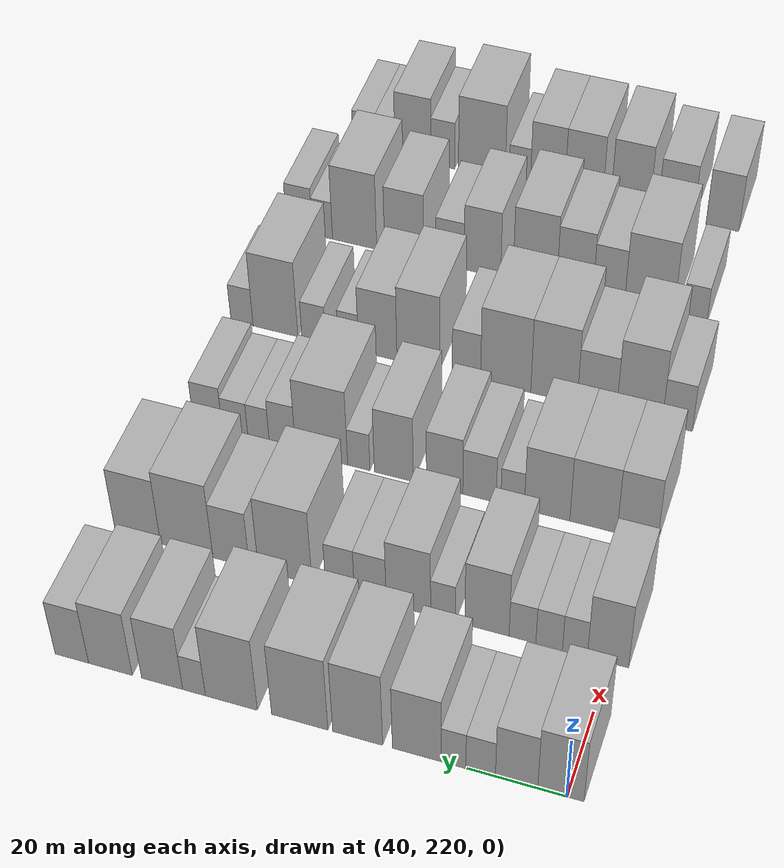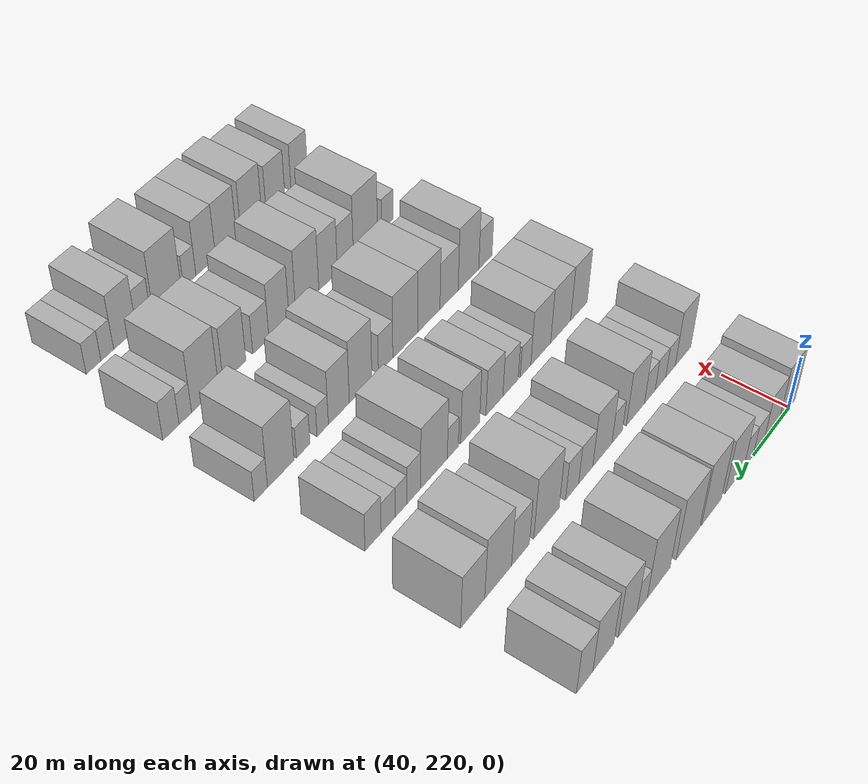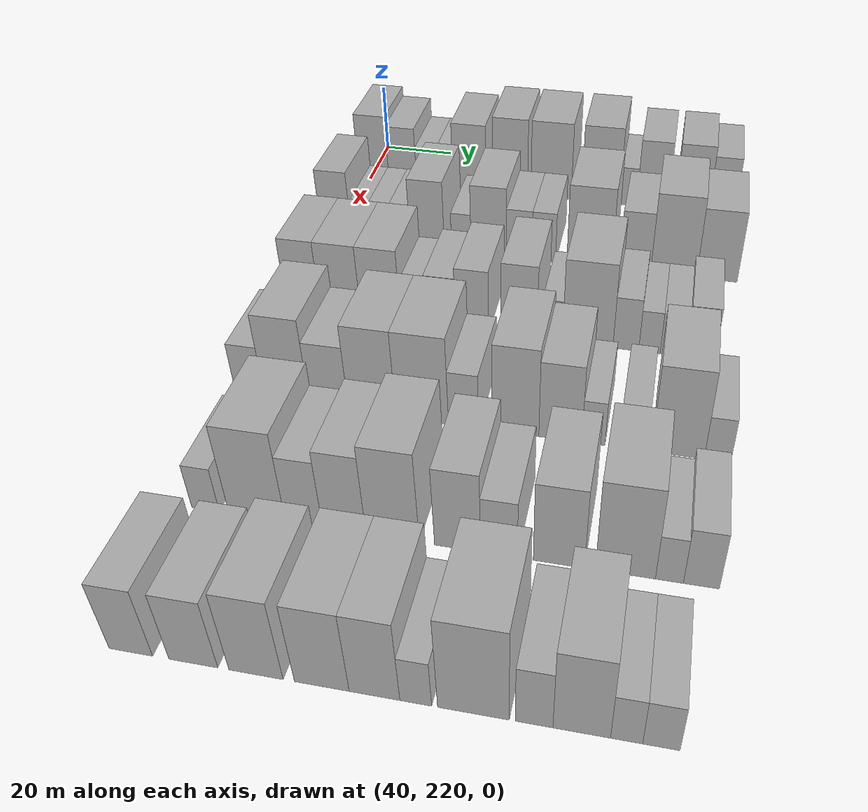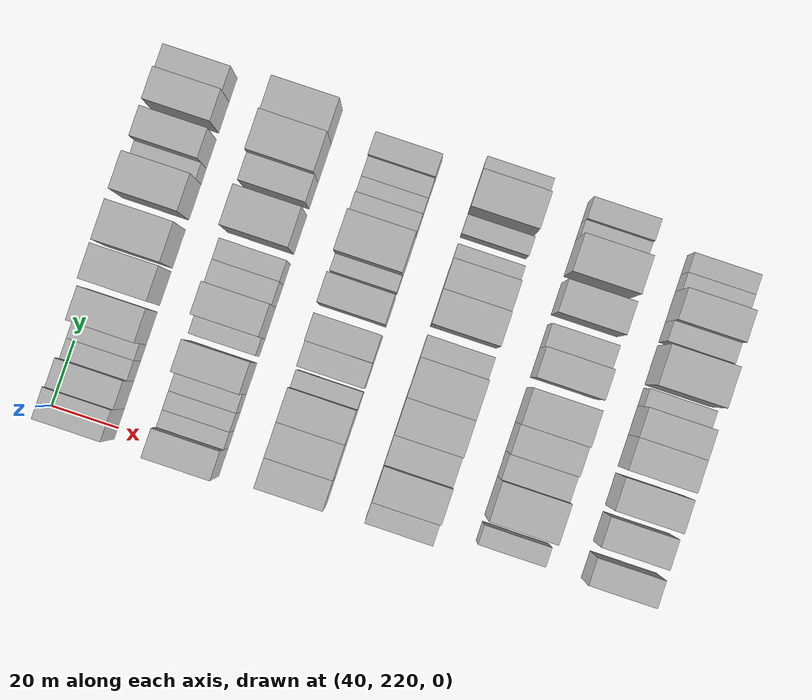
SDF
<sdf version="1.6">
 <world name="default">
  <model name="building_81">
   <static>1</static>
   <pose>50.0000 221.2689 0 0.000000 0.000000 0.000000</pose>
   <link name="link">
    <pose>0 0 10.50 0 0 0</pose>
    <collision name="collision"><geometry><box><size>20.0000 9.2093 21.0000</size></box></geometry></collision>
    <visual name="visual">
     <cast_shadows>0</cast_shadows>
     <geometry><box><size>20.0000 9.2093 21.0000</size></box></geometry>
     <material>
      <script>
       <uri>model://HANNAS_wall/materials/scripts</uri>
       <uri>model://HANNAS_wall/materials/textures</uri>
       <name>vrc/HANNAS_wall</name>
      </script>
     </material>
    </visual>
   </link>
  </model>
  <model name="building_82">
   <static>1</static>
   <pose>50.0000 230.1142 0 0.000000 0.000000 0.000000</pose>
   <link name="link">
    <pose>0 0 9.00 0 0 0</pose>
    <collision name="collision"><geometry><box><size>20.0000 8.4813 18.0000</size></box></geometry></collision>
    <visual name="visual">
     <cast_shadows>0</cast_shadows>
     <geometry><box><size>20.0000 8.4813 18.0000</size></box></geometry>
     <material>
      <script>
       <uri>model://HANNAS_wall/materials/scripts</uri>
       <uri>model://HANNAS_wall/materials/textures</uri>
       <name>vrc/HANNAS_wall</name>
      </script>
     </material>
    </visual>
   </link>
  </model>
  <model name="building_83">
   <static>1</static>
   <pose>50.0000 237.3378 0 0.000000 0.000000 0.000000</pose>
   <link name="link">
    <pose>0 0 6.00 0 0 0</pose>
    <collision name="collision"><geometry><box><size>20.0000 5.9659 12.0000</size></box></geometry></collision>
    <visual name="visual">
     <cast_shadows>0</cast_shadows>
     <geometry><box><size>20.0000 5.9659 12.0000</size></box></geometry>
     <material>
      <script>
       <uri>model://HANNAS_wall/materials/scripts</uri>
       <uri>model://HANNAS_wall/materials/textures</uri>
       <name>vrc/HANNAS_wall</name>
      </script>
     </material>
    </visual>
   </link>
  </model>
  <model name="building_84">
   <static>1</static>
   <pose>50.0000 242.8433 0 0.000000 0.000000 0.000000</pose>
   <link name="link">
    <pose>0 0 6.00 0 0 0</pose>
    <collision name="collision"><geometry><box><size>20.0000 5.0452 12.0000</size></box></geometry></collision>
    <visual name="visual">
     <cast_shadows>0</cast_shadows>
     <geometry><box><size>20.0000 5.0452 12.0000</size></box></geometry>
     <material>
      <script>
       <uri>model://HANNAS_wall/materials/scripts</uri>
       <uri>model://HANNAS_wall/materials/textures</uri>
       <name>vrc/HANNAS_wall</name>
      </script>
     </material>
    </visual>
   </link>
  </model>
  <model name="building_85">
   <static>1</static>
   <pose>50.0000 250.3256 0 0.000000 0.000000 0.000000</pose>
   <link name="link">
    <pose>0 0 10.50 0 0 0</pose>
    <collision name="collision"><geometry><box><size>20.0000 9.9194 21.0000</size></box></geometry></collision>
    <visual name="visual">
     <cast_shadows>0</cast_shadows>
     <geometry><box><size>20.0000 9.9194 21.0000</size></box></geometry>
     <material>
      <script>
       <uri>model://HANNAS_wall/materials/scripts</uri>
       <uri>model://HANNAS_wall/materials/textures</uri>
       <name>vrc/HANNAS_wall</name>
      </script>
     </material>
    </visual>
   </link>
  </model>
  <model name="building_86">
   <static>1</static>
   <pose>50.0000 262.4426 0 0.000000 0.000000 0.000000</pose>
   <link name="link">
    <pose>0 0 12.00 0 0 0</pose>
    <collision name="collision"><geometry><box><size>20.0000 10.3144 24.0000</size></box></geometry></collision>
    <visual name="visual">
     <cast_shadows>0</cast_shadows>
     <geometry><box><size>20.0000 10.3144 24.0000</size></box></geometry>
     <material>
      <script>
       <uri>model://HANNAS_wall/materials/scripts</uri>
       <uri>model://HANNAS_wall/materials/textures</uri>
       <name>vrc/HANNAS_wall</name>
      </script>
     </material>
    </visual>
   </link>
  </model>
  <model name="building_87">
   <static>1</static>
   <pose>50.0000 274.4874 0 0.000000 0.000000 0.000000</pose>
   <link name="link">
    <pose>0 0 12.00 0 0 0</pose>
    <collision name="collision"><geometry><box><size>20.0000 11.7753 24.0000</size></box></geometry></collision>
    <visual name="visual">
     <cast_shadows>0</cast_shadows>
     <geometry><box><size>20.0000 11.7753 24.0000</size></box></geometry>
     <material>
      <script>
       <uri>model://HANNAS_wall/materials/scripts</uri>
       <uri>model://HANNAS_wall/materials/textures</uri>
       <name>vrc/HANNAS_wall</name>
      </script>
     </material>
    </visual>
   </link>
  </model>
  <model name="building_88">
   <static>1</static>
   <pose>50.0000 288.8875 0 0.000000 0.000000 0.000000</pose>
   <link name="link">
    <pose>0 0 12.00 0 0 0</pose>
    <collision name="collision"><geometry><box><size>20.0000 11.0247 24.0000</size></box></geometry></collision>
    <visual name="visual">
     <cast_shadows>0</cast_shadows>
     <geometry><box><size>20.0000 11.0247 24.0000</size></box></geometry>
     <material>
      <script>
       <uri>model://HANNAS_wall/materials/scripts</uri>
       <uri>model://HANNAS_wall/materials/textures</uri>
       <name>vrc/HANNAS_wall</name>
      </script>
     </material>
    </visual>
   </link>
  </model>
  <model name="building_89">
   <static>1</static>
   <pose>50.0000 296.8274 0 0.000000 0.000000 0.000000</pose>
   <link name="link">
    <pose>0 0 6.00 0 0 0</pose>
    <collision name="collision"><geometry><box><size>20.0000 4.8552 12.0000</size></box></geometry></collision>
    <visual name="visual">
     <cast_shadows>0</cast_shadows>
     <geometry><box><size>20.0000 4.8552 12.0000</size></box></geometry>
     <material>
      <script>
       <uri>model://HANNAS_wall/materials/scripts</uri>
       <uri>model://HANNAS_wall/materials/textures</uri>
       <name>vrc/HANNAS_wall</name>
      </script>
     </material>
    </visual>
   </link>
  </model>
  <model name="building_90">
   <static>1</static>
   <pose>50.0000 303.6800 0 0.000000 0.000000 0.000000</pose>
   <link name="link">
    <pose>0 0 10.50 0 0 0</pose>
    <collision name="collision"><geometry><box><size>20.0000 8.8500 21.0000</size></box></geometry></collision>
    <visual name="visual">
     <cast_shadows>0</cast_shadows>
     <geometry><box><size>20.0000 8.8500 21.0000</size></box></geometry>
     <material>
      <script>
       <uri>model://HANNAS_wall/materials/scripts</uri>
       <uri>model://HANNAS_wall/materials/textures</uri>
       <name>vrc/HANNAS_wall</name>
      </script>
     </material>
    </visual>
   </link>
  </model>
  <model name="building_91">
   <static>1</static>
   <pose>50.0000 314.8587 0 0.000000 0.000000 0.000000</pose>
   <link name="link">
    <pose>0 0 10.50 0 0 0</pose>
    <collision name="collision"><geometry><box><size>20.0000 9.5074 21.0000</size></box></geometry></collision>
    <visual name="visual">
     <cast_shadows>0</cast_shadows>
     <geometry><box><size>20.0000 9.5074 21.0000</size></box></geometry>
     <material>
      <script>
       <uri>model://HANNAS_wall/materials/scripts</uri>
       <uri>model://HANNAS_wall/materials/textures</uri>
       <name>vrc/HANNAS_wall</name>
      </script>
     </material>
    </visual>
   </link>
  </model>
  <model name="building_92">
   <static>1</static>
   <pose>50.0000 323.2757 0 0.000000 0.000000 0.000000</pose>
   <link name="link">
    <pose>0 0 9.00 0 0 0</pose>
    <collision name="collision"><geometry><box><size>20.0000 7.3267 18.0000</size></box></geometry></collision>
    <visual name="visual">
     <cast_shadows>0</cast_shadows>
     <geometry><box><size>20.0000 7.3267 18.0000</size></box></geometry>
     <material>
      <script>
       <uri>model://HANNAS_wall/materials/scripts</uri>
       <uri>model://HANNAS_wall/materials/textures</uri>
       <name>vrc/HANNAS_wall</name>
      </script>
     </material>
    </visual>
   </link>
  </model>
  <model name="building_201">
   <static>1</static>
   <pose>82.0000 220.3982 0 0.000000 0.000000 0.000000</pose>
   <link name="link">
    <pose>0 0 10.50 0 0 0</pose>
    <collision name="collision"><geometry><box><size>20.0000 8.5645 21.0000</size></box></geometry></collision>
    <visual name="visual">
     <cast_shadows>0</cast_shadows>
     <geometry><box><size>20.0000 8.5645 21.0000</size></box></geometry>
     <material>
      <script>
       <uri>model://HANNAS_wall/materials/scripts</uri>
       <uri>model://HANNAS_wall/materials/textures</uri>
       <name>vrc/HANNAS_wall</name>
      </script>
     </material>
    </visual>
   </link>
  </model>
  <model name="building_202">
   <static>1</static>
   <pose>82.0000 227.2789 0 0.000000 0.000000 0.000000</pose>
   <link name="link">
    <pose>0 0 6.00 0 0 0</pose>
    <collision name="collision"><geometry><box><size>20.0000 5.1967 12.0000</size></box></geometry></collision>
    <visual name="visual">
     <cast_shadows>0</cast_shadows>
     <geometry><box><size>20.0000 5.1967 12.0000</size></box></geometry>
     <material>
      <script>
       <uri>model://HANNAS_wall/materials/scripts</uri>
       <uri>model://HANNAS_wall/materials/textures</uri>
       <name>vrc/HANNAS_wall</name>
      </script>
     </material>
    </visual>
   </link>
  </model>
  <model name="building_203">
   <static>1</static>
   <pose>82.0000 232.6651 0 0.000000 0.000000 0.000000</pose>
   <link name="link">
    <pose>0 0 6.00 0 0 0</pose>
    <collision name="collision"><geometry><box><size>20.0000 5.5757 12.0000</size></box></geometry></collision>
    <visual name="visual">
     <cast_shadows>0</cast_shadows>
     <geometry><box><size>20.0000 5.5757 12.0000</size></box></geometry>
     <material>
      <script>
       <uri>model://HANNAS_wall/materials/scripts</uri>
       <uri>model://HANNAS_wall/materials/textures</uri>
       <name>vrc/HANNAS_wall</name>
      </script>
     </material>
    </visual>
   </link>
  </model>
  <model name="building_204">
   <static>1</static>
   <pose>82.0000 238.2758 0 0.000000 0.000000 0.000000</pose>
   <link name="link">
    <pose>0 0 6.00 0 0 0</pose>
    <collision name="collision"><geometry><box><size>20.0000 5.6458 12.0000</size></box></geometry></collision>
    <visual name="visual">
     <cast_shadows>0</cast_shadows>
     <geometry><box><size>20.0000 5.6458 12.0000</size></box></geometry>
     <material>
      <script>
       <uri>model://HANNAS_wall/materials/scripts</uri>
       <uri>model://HANNAS_wall/materials/textures</uri>
       <name>vrc/HANNAS_wall</name>
      </script>
     </material>
    </visual>
   </link>
  </model>
  <model name="building_205">
   <static>1</static>
   <pose>82.0000 245.7991 0 0.000000 0.000000 0.000000</pose>
   <link name="link">
    <pose>0 0 10.50 0 0 0</pose>
    <collision name="collision"><geometry><box><size>20.0000 9.4008 21.0000</size></box></geometry></collision>
    <visual name="visual">
     <cast_shadows>0</cast_shadows>
     <geometry><box><size>20.0000 9.4008 21.0000</size></box></geometry>
     <material>
      <script>
       <uri>model://HANNAS_wall/materials/scripts</uri>
       <uri>model://HANNAS_wall/materials/textures</uri>
       <name>vrc/HANNAS_wall</name>
      </script>
     </material>
    </visual>
   </link>
  </model>
  <model name="building_206">
   <static>1</static>
   <pose>82.0000 255.1587 0 0.000000 0.000000 0.000000</pose>
   <link name="link">
    <pose>0 0 6.00 0 0 0</pose>
    <collision name="collision"><geometry><box><size>20.0000 5.3185 12.0000</size></box></geometry></collision>
    <visual name="visual">
     <cast_shadows>0</cast_shadows>
     <geometry><box><size>20.0000 5.3185 12.0000</size></box></geometry>
     <material>
      <script>
       <uri>model://HANNAS_wall/materials/scripts</uri>
       <uri>model://HANNAS_wall/materials/textures</uri>
       <name>vrc/HANNAS_wall</name>
      </script>
     </material>
    </visual>
   </link>
  </model>
  <model name="building_207">
   <static>1</static>
   <pose>82.0000 262.6081 0 0.000000 0.000000 0.000000</pose>
   <link name="link">
    <pose>0 0 10.50 0 0 0</pose>
    <collision name="collision"><geometry><box><size>20.0000 9.5802 21.0000</size></box></geometry></collision>
    <visual name="visual">
     <cast_shadows>0</cast_shadows>
     <geometry><box><size>20.0000 9.5802 21.0000</size></box></geometry>
     <material>
      <script>
       <uri>model://HANNAS_wall/materials/scripts</uri>
       <uri>model://HANNAS_wall/materials/textures</uri>
       <name>vrc/HANNAS_wall</name>
      </script>
     </material>
    </visual>
   </link>
  </model>
  <model name="building_208">
   <static>1</static>
   <pose>82.0000 270.8483 0 0.000000 0.000000 0.000000</pose>
   <link name="link">
    <pose>0 0 7.50 0 0 0</pose>
    <collision name="collision"><geometry><box><size>20.0000 6.9003 15.0000</size></box></geometry></collision>
    <visual name="visual">
     <cast_shadows>0</cast_shadows>
     <geometry><box><size>20.0000 6.9003 15.0000</size></box></geometry>
     <material>
      <script>
       <uri>model://HANNAS_wall/materials/scripts</uri>
       <uri>model://HANNAS_wall/materials/textures</uri>
       <name>vrc/HANNAS_wall</name>
      </script>
     </material>
    </visual>
   </link>
  </model>
  <model name="building_209">
   <static>1</static>
   <pose>82.0000 277.4435 0 0.000000 0.000000 0.000000</pose>
   <link name="link">
    <pose>0 0 7.50 0 0 0</pose>
    <collision name="collision"><geometry><box><size>20.0000 6.2900 15.0000</size></box></geometry></collision>
    <visual name="visual">
     <cast_shadows>0</cast_shadows>
     <geometry><box><size>20.0000 6.2900 15.0000</size></box></geometry>
     <material>
      <script>
       <uri>model://HANNAS_wall/materials/scripts</uri>
       <uri>model://HANNAS_wall/materials/textures</uri>
       <name>vrc/HANNAS_wall</name>
      </script>
     </material>
    </visual>
   </link>
  </model>
  <model name="building_210">
   <static>1</static>
   <pose>82.0000 289.5222 0 0.000000 0.000000 0.000000</pose>
   <link name="link">
    <pose>0 0 12.00 0 0 0</pose>
    <collision name="collision"><geometry><box><size>20.0000 11.8674 24.0000</size></box></geometry></collision>
    <visual name="visual">
     <cast_shadows>0</cast_shadows>
     <geometry><box><size>20.0000 11.8674 24.0000</size></box></geometry>
     <material>
      <script>
       <uri>model://HANNAS_wall/materials/scripts</uri>
       <uri>model://HANNAS_wall/materials/textures</uri>
       <name>vrc/HANNAS_wall</name>
      </script>
     </material>
    </visual>
   </link>
  </model>
  <model name="building_211">
   <static>1</static>
   <pose>82.0000 301.5171 0 0.000000 0.000000 0.000000</pose>
   <link name="link">
    <pose>0 0 9.00 0 0 0</pose>
    <collision name="collision"><geometry><box><size>20.0000 8.1224 18.0000</size></box></geometry></collision>
    <visual name="visual">
     <cast_shadows>0</cast_shadows>
     <geometry><box><size>20.0000 8.1224 18.0000</size></box></geometry>
     <material>
      <script>
       <uri>model://HANNAS_wall/materials/scripts</uri>
       <uri>model://HANNAS_wall/materials/textures</uri>
       <name>vrc/HANNAS_wall</name>
      </script>
     </material>
    </visual>
   </link>
  </model>
  <model name="building_212">
   <static>1</static>
   <pose>82.0000 311.4883 0 0.000000 0.000000 0.000000</pose>
   <link name="link">
    <pose>0 0 12.00 0 0 0</pose>
    <collision name="collision"><geometry><box><size>20.0000 11.8200 24.0000</size></box></geometry></collision>
    <visual name="visual">
     <cast_shadows>0</cast_shadows>
     <geometry><box><size>20.0000 11.8200 24.0000</size></box></geometry>
     <material>
      <script>
       <uri>model://HANNAS_wall/materials/scripts</uri>
       <uri>model://HANNAS_wall/materials/textures</uri>
       <name>vrc/HANNAS_wall</name>
      </script>
     </material>
    </visual>
   </link>
  </model>
  <model name="building_213">
   <static>1</static>
   <pose>82.0000 322.5639 0 0.000000 0.000000 0.000000</pose>
   <link name="link">
    <pose>0 0 10.50 0 0 0</pose>
    <collision name="collision"><geometry><box><size>20.0000 10.3311 21.0000</size></box></geometry></collision>
    <visual name="visual">
     <cast_shadows>0</cast_shadows>
     <geometry><box><size>20.0000 10.3311 21.0000</size></box></geometry>
     <material>
      <script>
       <uri>model://HANNAS_wall/materials/scripts</uri>
       <uri>model://HANNAS_wall/materials/textures</uri>
       <name>vrc/HANNAS_wall</name>
      </script>
     </material>
    </visual>
   </link>
  </model>
  <model name="building_321">
   <static>1</static>
   <pose>114.0000 222.4577 0 0.000000 0.000000 0.000000</pose>
   <link name="link">
    <pose>0 0 10.50 0 0 0</pose>
    <collision name="collision"><geometry><box><size>20.0000 8.7838 21.0000</size></box></geometry></collision>
    <visual name="visual">
     <cast_shadows>0</cast_shadows>
     <geometry><box><size>20.0000 8.7838 21.0000</size></box></geometry>
     <material>
      <script>
       <uri>model://HANNAS_wall/materials/scripts</uri>
       <uri>model://HANNAS_wall/materials/textures</uri>
       <name>vrc/HANNAS_wall</name>
      </script>
     </material>
    </visual>
   </link>
  </model>
  <model name="building_322">
   <static>1</static>
   <pose>114.0000 232.0140 0 0.000000 0.000000 0.000000</pose>
   <link name="link">
    <pose>0 0 10.50 0 0 0</pose>
    <collision name="collision"><geometry><box><size>20.0000 10.3288 21.0000</size></box></geometry></collision>
    <visual name="visual">
     <cast_shadows>0</cast_shadows>
     <geometry><box><size>20.0000 10.3288 21.0000</size></box></geometry>
     <material>
      <script>
       <uri>model://HANNAS_wall/materials/scripts</uri>
       <uri>model://HANNAS_wall/materials/textures</uri>
       <name>vrc/HANNAS_wall</name>
      </script>
     </material>
    </visual>
   </link>
  </model>
  <model name="building_323">
   <static>1</static>
   <pose>114.0000 242.1978 0 0.000000 0.000000 0.000000</pose>
   <link name="link">
    <pose>0 0 10.50 0 0 0</pose>
    <collision name="collision"><geometry><box><size>20.0000 10.0388 21.0000</size></box></geometry></collision>
    <visual name="visual">
     <cast_shadows>0</cast_shadows>
     <geometry><box><size>20.0000 10.0388 21.0000</size></box></geometry>
     <material>
      <script>
       <uri>model://HANNAS_wall/materials/scripts</uri>
       <uri>model://HANNAS_wall/materials/textures</uri>
       <name>vrc/HANNAS_wall</name>
      </script>
     </material>
    </visual>
   </link>
  </model>
  <model name="building_324">
   <static>1</static>
   <pose>114.0000 249.8424 0 0.000000 0.000000 0.000000</pose>
   <link name="link">
    <pose>0 0 6.00 0 0 0</pose>
    <collision name="collision"><geometry><box><size>20.0000 5.2505 12.0000</size></box></geometry></collision>
    <visual name="visual">
     <cast_shadows>0</cast_shadows>
     <geometry><box><size>20.0000 5.2505 12.0000</size></box></geometry>
     <material>
      <script>
       <uri>model://HANNAS_wall/materials/scripts</uri>
       <uri>model://HANNAS_wall/materials/textures</uri>
       <name>vrc/HANNAS_wall</name>
      </script>
     </material>
    </visual>
   </link>
  </model>
  <model name="building_325">
   <static>1</static>
   <pose>114.0000 257.2094 0 0.000000 0.000000 0.000000</pose>
   <link name="link">
    <pose>0 0 7.50 0 0 0</pose>
    <collision name="collision"><geometry><box><size>20.0000 7.4834 15.0000</size></box></geometry></collision>
    <visual name="visual">
     <cast_shadows>0</cast_shadows>
     <geometry><box><size>20.0000 7.4834 15.0000</size></box></geometry>
     <material>
      <script>
       <uri>model://HANNAS_wall/materials/scripts</uri>
       <uri>model://HANNAS_wall/materials/textures</uri>
       <name>vrc/HANNAS_wall</name>
      </script>
     </material>
    </visual>
   </link>
  </model>
  <model name="building_326">
   <static>1</static>
   <pose>114.0000 265.0260 0 0.000000 0.000000 0.000000</pose>
   <link name="link">
    <pose>0 0 9.00 0 0 0</pose>
    <collision name="collision"><geometry><box><size>20.0000 8.1498 18.0000</size></box></geometry></collision>
    <visual name="visual">
     <cast_shadows>0</cast_shadows>
     <geometry><box><size>20.0000 8.1498 18.0000</size></box></geometry>
     <material>
      <script>
       <uri>model://HANNAS_wall/materials/scripts</uri>
       <uri>model://HANNAS_wall/materials/textures</uri>
       <name>vrc/HANNAS_wall</name>
      </script>
     </material>
    </visual>
   </link>
  </model>
  <model name="building_327">
   <static>1</static>
   <pose>114.0000 276.5227 0 0.000000 0.000000 0.000000</pose>
   <link name="link">
    <pose>0 0 10.50 0 0 0</pose>
    <collision name="collision"><geometry><box><size>20.0000 8.8436 21.0000</size></box></geometry></collision>
    <visual name="visual">
     <cast_shadows>0</cast_shadows>
     <geometry><box><size>20.0000 8.8436 21.0000</size></box></geometry>
     <material>
      <script>
       <uri>model://HANNAS_wall/materials/scripts</uri>
       <uri>model://HANNAS_wall/materials/textures</uri>
       <name>vrc/HANNAS_wall</name>
      </script>
     </material>
    </visual>
   </link>
  </model>
  <model name="building_328">
   <static>1</static>
   <pose>114.0000 284.4895 0 0.000000 0.000000 0.000000</pose>
   <link name="link">
    <pose>0 0 6.00 0 0 0</pose>
    <collision name="collision"><geometry><box><size>20.0000 5.0899 12.0000</size></box></geometry></collision>
    <visual name="visual">
     <cast_shadows>0</cast_shadows>
     <geometry><box><size>20.0000 5.0899 12.0000</size></box></geometry>
     <material>
      <script>
       <uri>model://HANNAS_wall/materials/scripts</uri>
       <uri>model://HANNAS_wall/materials/textures</uri>
       <name>vrc/HANNAS_wall</name>
      </script>
     </material>
    </visual>
   </link>
  </model>
  <model name="building_329">
   <static>1</static>
   <pose>114.0000 293.0327 0 0.000000 0.000000 0.000000</pose>
   <link name="link">
    <pose>0 0 12.00 0 0 0</pose>
    <collision name="collision"><geometry><box><size>20.0000 11.9965 24.0000</size></box></geometry></collision>
    <visual name="visual">
     <cast_shadows>0</cast_shadows>
     <geometry><box><size>20.0000 11.9965 24.0000</size></box></geometry>
     <material>
      <script>
       <uri>model://HANNAS_wall/materials/scripts</uri>
       <uri>model://HANNAS_wall/materials/textures</uri>
       <name>vrc/HANNAS_wall</name>
      </script>
     </material>
    </visual>
   </link>
  </model>
  <model name="building_330">
   <static>1</static>
   <pose>114.0000 302.0735 0 0.000000 0.000000 0.000000</pose>
   <link name="link">
    <pose>0 0 7.50 0 0 0</pose>
    <collision name="collision"><geometry><box><size>20.0000 6.0850 15.0000</size></box></geometry></collision>
    <visual name="visual">
     <cast_shadows>0</cast_shadows>
     <geometry><box><size>20.0000 6.0850 15.0000</size></box></geometry>
     <material>
      <script>
       <uri>model://HANNAS_wall/materials/scripts</uri>
       <uri>model://HANNAS_wall/materials/textures</uri>
       <name>vrc/HANNAS_wall</name>
      </script>
     </material>
    </visual>
   </link>
  </model>
  <model name="building_331">
   <static>1</static>
   <pose>114.0000 307.6143 0 0.000000 0.000000 0.000000</pose>
   <link name="link">
    <pose>0 0 6.00 0 0 0</pose>
    <collision name="collision"><geometry><box><size>20.0000 4.9967 12.0000</size></box></geometry></collision>
    <visual name="visual">
     <cast_shadows>0</cast_shadows>
     <geometry><box><size>20.0000 4.9967 12.0000</size></box></geometry>
     <material>
      <script>
       <uri>model://HANNAS_wall/materials/scripts</uri>
       <uri>model://HANNAS_wall/materials/textures</uri>
       <name>vrc/HANNAS_wall</name>
      </script>
     </material>
    </visual>
   </link>
  </model>
  <model name="building_332">
   <static>1</static>
   <pose>114.0000 313.0994 0 0.000000 0.000000 0.000000</pose>
   <link name="link">
    <pose>0 0 6.00 0 0 0</pose>
    <collision name="collision"><geometry><box><size>20.0000 5.9735 12.0000</size></box></geometry></collision>
    <visual name="visual">
     <cast_shadows>0</cast_shadows>
     <geometry><box><size>20.0000 5.9735 12.0000</size></box></geometry>
     <material>
      <script>
       <uri>model://HANNAS_wall/materials/scripts</uri>
       <uri>model://HANNAS_wall/materials/textures</uri>
       <name>vrc/HANNAS_wall</name>
      </script>
     </material>
    </visual>
   </link>
  </model>
  <model name="building_333">
   <static>1</static>
   <pose>114.0000 319.4755 0 0.000000 0.000000 0.000000</pose>
   <link name="link">
    <pose>0 0 7.50 0 0 0</pose>
    <collision name="collision"><geometry><box><size>20.0000 6.7786 15.0000</size></box></geometry></collision>
    <visual name="visual">
     <cast_shadows>0</cast_shadows>
     <geometry><box><size>20.0000 6.7786 15.0000</size></box></geometry>
     <material>
      <script>
       <uri>model://HANNAS_wall/materials/scripts</uri>
       <uri>model://HANNAS_wall/materials/textures</uri>
       <name>vrc/HANNAS_wall</name>
      </script>
     </material>
    </visual>
   </link>
  </model>
  <model name="building_439">
   <static>1</static>
   <pose>146.0000 221.5422 0 0.000000 0.000000 0.000000</pose>
   <link name="link">
    <pose>0 0 7.50 0 0 0</pose>
    <collision name="collision"><geometry><box><size>20.0000 6.8098 15.0000</size></box></geometry></collision>
    <visual name="visual">
     <cast_shadows>0</cast_shadows>
     <geometry><box><size>20.0000 6.8098 15.0000</size></box></geometry>
     <material>
      <script>
       <uri>model://HANNAS_wall/materials/scripts</uri>
       <uri>model://HANNAS_wall/materials/textures</uri>
       <name>vrc/HANNAS_wall</name>
      </script>
     </material>
    </visual>
   </link>
  </model>
  <model name="building_440">
   <static>1</static>
   <pose>146.0000 230.1543 0 0.000000 0.000000 0.000000</pose>
   <link name="link">
    <pose>0 0 12.00 0 0 0</pose>
    <collision name="collision"><geometry><box><size>20.0000 10.4144 24.0000</size></box></geometry></collision>
    <visual name="visual">
     <cast_shadows>0</cast_shadows>
     <geometry><box><size>20.0000 10.4144 24.0000</size></box></geometry>
     <material>
      <script>
       <uri>model://HANNAS_wall/materials/scripts</uri>
       <uri>model://HANNAS_wall/materials/textures</uri>
       <name>vrc/HANNAS_wall</name>
      </script>
     </material>
    </visual>
   </link>
  </model>
  <model name="building_441">
   <static>1</static>
   <pose>146.0000 239.8431 0 0.000000 0.000000 0.000000</pose>
   <link name="link">
    <pose>0 0 9.00 0 0 0</pose>
    <collision name="collision"><geometry><box><size>20.0000 8.9633 18.0000</size></box></geometry></collision>
    <visual name="visual">
     <cast_shadows>0</cast_shadows>
     <geometry><box><size>20.0000 8.9633 18.0000</size></box></geometry>
     <material>
      <script>
       <uri>model://HANNAS_wall/materials/scripts</uri>
       <uri>model://HANNAS_wall/materials/textures</uri>
       <name>vrc/HANNAS_wall</name>
      </script>
     </material>
    </visual>
   </link>
  </model>
  <model name="building_442">
   <static>1</static>
   <pose>146.0000 249.6888 0 0.000000 0.000000 0.000000</pose>
   <link name="link">
    <pose>0 0 12.00 0 0 0</pose>
    <collision name="collision"><geometry><box><size>20.0000 10.7281 24.0000</size></box></geometry></collision>
    <visual name="visual">
     <cast_shadows>0</cast_shadows>
     <geometry><box><size>20.0000 10.7281 24.0000</size></box></geometry>
     <material>
      <script>
       <uri>model://HANNAS_wall/materials/scripts</uri>
       <uri>model://HANNAS_wall/materials/textures</uri>
       <name>vrc/HANNAS_wall</name>
      </script>
     </material>
    </visual>
   </link>
  </model>
  <model name="building_443">
   <static>1</static>
   <pose>146.0000 260.9153 0 0.000000 0.000000 0.000000</pose>
   <link name="link">
    <pose>0 0 12.00 0 0 0</pose>
    <collision name="collision"><geometry><box><size>20.0000 11.7249 24.0000</size></box></geometry></collision>
    <visual name="visual">
     <cast_shadows>0</cast_shadows>
     <geometry><box><size>20.0000 11.7249 24.0000</size></box></geometry>
     <material>
      <script>
       <uri>model://HANNAS_wall/materials/scripts</uri>
       <uri>model://HANNAS_wall/materials/textures</uri>
       <name>vrc/HANNAS_wall</name>
      </script>
     </material>
    </visual>
   </link>
  </model>
  <model name="building_444">
   <static>1</static>
   <pose>146.0000 270.1000 0 0.000000 0.000000 0.000000</pose>
   <link name="link">
    <pose>0 0 7.50 0 0 0</pose>
    <collision name="collision"><geometry><box><size>20.0000 6.6444 15.0000</size></box></geometry></collision>
    <visual name="visual">
     <cast_shadows>0</cast_shadows>
     <geometry><box><size>20.0000 6.6444 15.0000</size></box></geometry>
     <material>
      <script>
       <uri>model://HANNAS_wall/materials/scripts</uri>
       <uri>model://HANNAS_wall/materials/textures</uri>
       <name>vrc/HANNAS_wall</name>
      </script>
     </material>
    </visual>
   </link>
  </model>
  <model name="building_445">
   <static>1</static>
   <pose>146.0000 281.4674 0 0.000000 0.000000 0.000000</pose>
   <link name="link">
    <pose>0 0 12.00 0 0 0</pose>
    <collision name="collision"><geometry><box><size>20.0000 10.0904 24.0000</size></box></geometry></collision>
    <visual name="visual">
     <cast_shadows>0</cast_shadows>
     <geometry><box><size>20.0000 10.0904 24.0000</size></box></geometry>
     <material>
      <script>
       <uri>model://HANNAS_wall/materials/scripts</uri>
       <uri>model://HANNAS_wall/materials/textures</uri>
       <name>vrc/HANNAS_wall</name>
      </script>
     </material>
    </visual>
   </link>
  </model>
  <model name="building_446">
   <static>1</static>
   <pose>146.0000 291.1165 0 0.000000 0.000000 0.000000</pose>
   <link name="link">
    <pose>0 0 10.50 0 0 0</pose>
    <collision name="collision"><geometry><box><size>20.0000 9.2079 21.0000</size></box></geometry></collision>
    <visual name="visual">
     <cast_shadows>0</cast_shadows>
     <geometry><box><size>20.0000 9.2079 21.0000</size></box></geometry>
     <material>
      <script>
       <uri>model://HANNAS_wall/materials/scripts</uri>
       <uri>model://HANNAS_wall/materials/textures</uri>
       <name>vrc/HANNAS_wall</name>
      </script>
     </material>
    </visual>
   </link>
  </model>
  <model name="building_447">
   <static>1</static>
   <pose>146.0000 298.1789 0 0.000000 0.000000 0.000000</pose>
   <link name="link">
    <pose>0 0 6.00 0 0 0</pose>
    <collision name="collision"><geometry><box><size>20.0000 4.9169 12.0000</size></box></geometry></collision>
    <visual name="visual">
     <cast_shadows>0</cast_shadows>
     <geometry><box><size>20.0000 4.9169 12.0000</size></box></geometry>
     <material>
      <script>
       <uri>model://HANNAS_wall/materials/scripts</uri>
       <uri>model://HANNAS_wall/materials/textures</uri>
       <name>vrc/HANNAS_wall</name>
      </script>
     </material>
    </visual>
   </link>
  </model>
  <model name="building_448">
   <static>1</static>
   <pose>146.0000 306.5171 0 0.000000 0.000000 0.000000</pose>
   <link name="link">
    <pose>0 0 6.00 0 0 0</pose>
    <collision name="collision"><geometry><box><size>20.0000 5.7596 12.0000</size></box></geometry></collision>
    <visual name="visual">
     <cast_shadows>0</cast_shadows>
     <geometry><box><size>20.0000 5.7596 12.0000</size></box></geometry>
     <material>
      <script>
       <uri>model://HANNAS_wall/materials/scripts</uri>
       <uri>model://HANNAS_wall/materials/textures</uri>
       <name>vrc/HANNAS_wall</name>
      </script>
     </material>
    </visual>
   </link>
  </model>
  <model name="building_449">
   <static>1</static>
   <pose>146.0000 315.8622 0 0.000000 0.000000 0.000000</pose>
   <link name="link">
    <pose>0 0 12.00 0 0 0</pose>
    <collision name="collision"><geometry><box><size>20.0000 10.9305 24.0000</size></box></geometry></collision>
    <visual name="visual">
     <cast_shadows>0</cast_shadows>
     <geometry><box><size>20.0000 10.9305 24.0000</size></box></geometry>
     <material>
      <script>
       <uri>model://HANNAS_wall/materials/scripts</uri>
       <uri>model://HANNAS_wall/materials/textures</uri>
       <name>vrc/HANNAS_wall</name>
      </script>
     </material>
    </visual>
   </link>
  </model>
  <model name="building_450">
   <static>1</static>
   <pose>146.0000 324.0495 0 0.000000 0.000000 0.000000</pose>
   <link name="link">
    <pose>0 0 6.00 0 0 0</pose>
    <collision name="collision"><geometry><box><size>20.0000 5.4441 12.0000</size></box></geometry></collision>
    <visual name="visual">
     <cast_shadows>0</cast_shadows>
     <geometry><box><size>20.0000 5.4441 12.0000</size></box></geometry>
     <material>
      <script>
       <uri>model://HANNAS_wall/materials/scripts</uri>
       <uri>model://HANNAS_wall/materials/textures</uri>
       <name>vrc/HANNAS_wall</name>
      </script>
     </material>
    </visual>
   </link>
  </model>
  <model name="building_564">
   <static>1</static>
   <pose>178.0000 225.1932 0 0.000000 0.000000 0.000000</pose>
   <link name="link">
    <pose>0 0 6.00 0 0 0</pose>
    <collision name="collision"><geometry><box><size>20.0000 5.7702 12.0000</size></box></geometry></collision>
    <visual name="visual">
     <cast_shadows>0</cast_shadows>
     <geometry><box><size>20.0000 5.7702 12.0000</size></box></geometry>
     <material>
      <script>
       <uri>model://HANNAS_wall/materials/scripts</uri>
       <uri>model://HANNAS_wall/materials/textures</uri>
       <name>vrc/HANNAS_wall</name>
      </script>
     </material>
    </visual>
   </link>
  </model>
  <model name="building_565">
   <static>1</static>
   <pose>178.0000 235.9443 0 0.000000 0.000000 0.000000</pose>
   <link name="link">
    <pose>0 0 12.00 0 0 0</pose>
    <collision name="collision"><geometry><box><size>20.0000 11.7320 24.0000</size></box></geometry></collision>
    <visual name="visual">
     <cast_shadows>0</cast_shadows>
     <geometry><box><size>20.0000 11.7320 24.0000</size></box></geometry>
     <material>
      <script>
       <uri>model://HANNAS_wall/materials/scripts</uri>
       <uri>model://HANNAS_wall/materials/textures</uri>
       <name>vrc/HANNAS_wall</name>
      </script>
     </material>
    </visual>
   </link>
  </model>
  <model name="building_566">
   <static>1</static>
   <pose>178.0000 245.5852 0 0.000000 0.000000 0.000000</pose>
   <link name="link">
    <pose>0 0 9.00 0 0 0</pose>
    <collision name="collision"><geometry><box><size>20.0000 7.5498 18.0000</size></box></geometry></collision>
    <visual name="visual">
     <cast_shadows>0</cast_shadows>
     <geometry><box><size>20.0000 7.5498 18.0000</size></box></geometry>
     <material>
      <script>
       <uri>model://HANNAS_wall/materials/scripts</uri>
       <uri>model://HANNAS_wall/materials/textures</uri>
       <name>vrc/HANNAS_wall</name>
      </script>
     </material>
    </visual>
   </link>
  </model>
  <model name="building_567">
   <static>1</static>
   <pose>178.0000 253.7147 0 0.000000 0.000000 0.000000</pose>
   <link name="link">
    <pose>0 0 10.50 0 0 0</pose>
    <collision name="collision"><geometry><box><size>20.0000 8.7093 21.0000</size></box></geometry></collision>
    <visual name="visual">
     <cast_shadows>0</cast_shadows>
     <geometry><box><size>20.0000 8.7093 21.0000</size></box></geometry>
     <material>
      <script>
       <uri>model://HANNAS_wall/materials/scripts</uri>
       <uri>model://HANNAS_wall/materials/textures</uri>
       <name>vrc/HANNAS_wall</name>
      </script>
     </material>
    </visual>
   </link>
  </model>
  <model name="building_568">
   <static>1</static>
   <pose>178.0000 263.3561 0 0.000000 0.000000 0.000000</pose>
   <link name="link">
    <pose>0 0 12.00 0 0 0</pose>
    <collision name="collision"><geometry><box><size>20.0000 10.5734 24.0000</size></box></geometry></collision>
    <visual name="visual">
     <cast_shadows>0</cast_shadows>
     <geometry><box><size>20.0000 10.5734 24.0000</size></box></geometry>
     <material>
      <script>
       <uri>model://HANNAS_wall/materials/scripts</uri>
       <uri>model://HANNAS_wall/materials/textures</uri>
       <name>vrc/HANNAS_wall</name>
      </script>
     </material>
    </visual>
   </link>
  </model>
  <model name="building_569">
   <static>1</static>
   <pose>178.0000 276.1267 0 0.000000 0.000000 0.000000</pose>
   <link name="link">
    <pose>0 0 10.50 0 0 0</pose>
    <collision name="collision"><geometry><box><size>20.0000 8.9679 21.0000</size></box></geometry></collision>
    <visual name="visual">
     <cast_shadows>0</cast_shadows>
     <geometry><box><size>20.0000 8.9679 21.0000</size></box></geometry>
     <material>
      <script>
       <uri>model://HANNAS_wall/materials/scripts</uri>
       <uri>model://HANNAS_wall/materials/textures</uri>
       <name>vrc/HANNAS_wall</name>
      </script>
     </material>
    </visual>
   </link>
  </model>
  <model name="building_570">
   <static>1</static>
   <pose>178.0000 284.1338 0 0.000000 0.000000 0.000000</pose>
   <link name="link">
    <pose>0 0 7.50 0 0 0</pose>
    <collision name="collision"><geometry><box><size>20.0000 7.0463 15.0000</size></box></geometry></collision>
    <visual name="visual">
     <cast_shadows>0</cast_shadows>
     <geometry><box><size>20.0000 7.0463 15.0000</size></box></geometry>
     <material>
      <script>
       <uri>model://HANNAS_wall/materials/scripts</uri>
       <uri>model://HANNAS_wall/materials/textures</uri>
       <name>vrc/HANNAS_wall</name>
      </script>
     </material>
    </visual>
   </link>
  </model>
  <model name="building_571">
   <static>1</static>
   <pose>178.0000 295.4900 0 0.000000 0.000000 0.000000</pose>
   <link name="link">
    <pose>0 0 10.50 0 0 0</pose>
    <collision name="collision"><geometry><box><size>20.0000 9.6660 21.0000</size></box></geometry></collision>
    <visual name="visual">
     <cast_shadows>0</cast_shadows>
     <geometry><box><size>20.0000 9.6660 21.0000</size></box></geometry>
     <material>
      <script>
       <uri>model://HANNAS_wall/materials/scripts</uri>
       <uri>model://HANNAS_wall/materials/textures</uri>
       <name>vrc/HANNAS_wall</name>
      </script>
     </material>
    </visual>
   </link>
  </model>
  <model name="building_572">
   <static>1</static>
   <pose>178.0000 307.8734 0 0.000000 0.000000 0.000000</pose>
   <link name="link">
    <pose>0 0 12.00 0 0 0</pose>
    <collision name="collision"><geometry><box><size>20.0000 11.1009 24.0000</size></box></geometry></collision>
    <visual name="visual">
     <cast_shadows>0</cast_shadows>
     <geometry><box><size>20.0000 11.1009 24.0000</size></box></geometry>
     <material>
      <script>
       <uri>model://HANNAS_wall/materials/scripts</uri>
       <uri>model://HANNAS_wall/materials/textures</uri>
       <name>vrc/HANNAS_wall</name>
      </script>
     </material>
    </visual>
   </link>
  </model>
  <model name="building_573">
   <static>1</static>
   <pose>178.0000 315.9834 0 0.000000 0.000000 0.000000</pose>
   <link name="link">
    <pose>0 0 6.00 0 0 0</pose>
    <collision name="collision"><geometry><box><size>20.0000 5.1191 12.0000</size></box></geometry></collision>
    <visual name="visual">
     <cast_shadows>0</cast_shadows>
     <geometry><box><size>20.0000 5.1191 12.0000</size></box></geometry>
     <material>
      <script>
       <uri>model://HANNAS_wall/materials/scripts</uri>
       <uri>model://HANNAS_wall/materials/textures</uri>
       <name>vrc/HANNAS_wall</name>
      </script>
     </material>
    </visual>
   </link>
  </model>
  <model name="building_574">
   <static>1</static>
   <pose>178.0000 321.7994 0 0.000000 0.000000 0.000000</pose>
   <link name="link">
    <pose>0 0 7.50 0 0 0</pose>
    <collision name="collision"><geometry><box><size>20.0000 6.5129 15.0000</size></box></geometry></collision>
    <visual name="visual">
     <cast_shadows>0</cast_shadows>
     <geometry><box><size>20.0000 6.5129 15.0000</size></box></geometry>
     <material>
      <script>
       <uri>model://HANNAS_wall/materials/scripts</uri>
       <uri>model://HANNAS_wall/materials/textures</uri>
       <name>vrc/HANNAS_wall</name>
      </script>
     </material>
    </visual>
   </link>
  </model>
  <model name="building_688">
   <static>1</static>
   <pose>210.0000 225.8540 0 0.000000 0.000000 0.000000</pose>
   <link name="link">
    <pose>0 0 9.00 0 0 0</pose>
    <collision name="collision"><geometry><box><size>20.0000 8.0611 18.0000</size></box></geometry></collision>
    <visual name="visual">
     <cast_shadows>0</cast_shadows>
     <geometry><box><size>20.0000 8.0611 18.0000</size></box></geometry>
     <material>
      <script>
       <uri>model://HANNAS_wall/materials/scripts</uri>
       <uri>model://HANNAS_wall/materials/textures</uri>
       <name>vrc/HANNAS_wall</name>
      </script>
     </material>
    </visual>
   </link>
  </model>
  <model name="building_689">
   <static>1</static>
   <pose>210.0000 237.3306 0 0.000000 0.000000 0.000000</pose>
   <link name="link">
    <pose>0 0 9.00 0 0 0</pose>
    <collision name="collision"><geometry><box><size>20.0000 8.8922 18.0000</size></box></geometry></collision>
    <visual name="visual">
     <cast_shadows>0</cast_shadows>
     <geometry><box><size>20.0000 8.8922 18.0000</size></box></geometry>
     <material>
      <script>
       <uri>model://HANNAS_wall/materials/scripts</uri>
       <uri>model://HANNAS_wall/materials/textures</uri>
       <name>vrc/HANNAS_wall</name>
      </script>
     </material>
    </visual>
   </link>
  </model>
  <model name="building_690">
   <static>1</static>
   <pose>210.0000 248.6125 0 0.000000 0.000000 0.000000</pose>
   <link name="link">
    <pose>0 0 10.50 0 0 0</pose>
    <collision name="collision"><geometry><box><size>20.0000 9.6715 21.0000</size></box></geometry></collision>
    <visual name="visual">
     <cast_shadows>0</cast_shadows>
     <geometry><box><size>20.0000 9.6715 21.0000</size></box></geometry>
     <material>
      <script>
       <uri>model://HANNAS_wall/materials/scripts</uri>
       <uri>model://HANNAS_wall/materials/textures</uri>
       <name>vrc/HANNAS_wall</name>
      </script>
     </material>
    </visual>
   </link>
  </model>
  <model name="building_691">
   <static>1</static>
   <pose>210.0000 260.2256 0 0.000000 0.000000 0.000000</pose>
   <link name="link">
    <pose>0 0 10.50 0 0 0</pose>
    <collision name="collision"><geometry><box><size>20.0000 9.5547 21.0000</size></box></geometry></collision>
    <visual name="visual">
     <cast_shadows>0</cast_shadows>
     <geometry><box><size>20.0000 9.5547 21.0000</size></box></geometry>
     <material>
      <script>
       <uri>model://HANNAS_wall/materials/scripts</uri>
       <uri>model://HANNAS_wall/materials/textures</uri>
       <name>vrc/HANNAS_wall</name>
      </script>
     </material>
    </visual>
   </link>
  </model>
  <model name="building_692">
   <static>1</static>
   <pose>210.0000 269.3563 0 0.000000 0.000000 0.000000</pose>
   <link name="link">
    <pose>0 0 10.50 0 0 0</pose>
    <collision name="collision"><geometry><box><size>20.0000 8.7067 21.0000</size></box></geometry></collision>
    <visual name="visual">
     <cast_shadows>0</cast_shadows>
     <geometry><box><size>20.0000 8.7067 21.0000</size></box></geometry>
     <material>
      <script>
       <uri>model://HANNAS_wall/materials/scripts</uri>
       <uri>model://HANNAS_wall/materials/textures</uri>
       <name>vrc/HANNAS_wall</name>
      </script>
     </material>
    </visual>
   </link>
  </model>
  <model name="building_693">
   <static>1</static>
   <pose>210.0000 276.4061 0 0.000000 0.000000 0.000000</pose>
   <link name="link">
    <pose>0 0 6.00 0 0 0</pose>
    <collision name="collision"><geometry><box><size>20.0000 5.3930 12.0000</size></box></geometry></collision>
    <visual name="visual">
     <cast_shadows>0</cast_shadows>
     <geometry><box><size>20.0000 5.3930 12.0000</size></box></geometry>
     <material>
      <script>
       <uri>model://HANNAS_wall/materials/scripts</uri>
       <uri>model://HANNAS_wall/materials/textures</uri>
       <name>vrc/HANNAS_wall</name>
      </script>
     </material>
    </visual>
   </link>
  </model>
  <model name="building_694">
   <static>1</static>
   <pose>210.0000 286.0820 0 0.000000 0.000000 0.000000</pose>
   <link name="link">
    <pose>0 0 12.00 0 0 0</pose>
    <collision name="collision"><geometry><box><size>20.0000 11.9587 24.0000</size></box></geometry></collision>
    <visual name="visual">
     <cast_shadows>0</cast_shadows>
     <geometry><box><size>20.0000 11.9587 24.0000</size></box></geometry>
     <material>
      <script>
       <uri>model://HANNAS_wall/materials/scripts</uri>
       <uri>model://HANNAS_wall/materials/textures</uri>
       <name>vrc/HANNAS_wall</name>
      </script>
     </material>
    </visual>
   </link>
  </model>
  <model name="building_695">
   <static>1</static>
   <pose>210.0000 296.1288 0 0.000000 0.000000 0.000000</pose>
   <link name="link">
    <pose>0 0 7.50 0 0 0</pose>
    <collision name="collision"><geometry><box><size>20.0000 6.1350 15.0000</size></box></geometry></collision>
    <visual name="visual">
     <cast_shadows>0</cast_shadows>
     <geometry><box><size>20.0000 6.1350 15.0000</size></box></geometry>
     <material>
      <script>
       <uri>model://HANNAS_wall/materials/scripts</uri>
       <uri>model://HANNAS_wall/materials/textures</uri>
       <name>vrc/HANNAS_wall</name>
      </script>
     </material>
    </visual>
   </link>
  </model>
  <model name="building_696">
   <static>1</static>
   <pose>210.0000 303.8485 0 0.000000 0.000000 0.000000</pose>
   <link name="link">
    <pose>0 0 10.50 0 0 0</pose>
    <collision name="collision"><geometry><box><size>20.0000 9.3044 21.0000</size></box></geometry></collision>
    <visual name="visual">
     <cast_shadows>0</cast_shadows>
     <geometry><box><size>20.0000 9.3044 21.0000</size></box></geometry>
     <material>
      <script>
       <uri>model://HANNAS_wall/materials/scripts</uri>
       <uri>model://HANNAS_wall/materials/textures</uri>
       <name>vrc/HANNAS_wall</name>
      </script>
     </material>
    </visual>
   </link>
  </model>
  <model name="building_697">
   <static>1</static>
   <pose>210.0000 311.0565 0 0.000000 0.000000 0.000000</pose>
   <link name="link">
    <pose>0 0 6.00 0 0 0</pose>
    <collision name="collision"><geometry><box><size>20.0000 5.1115 12.0000</size></box></geometry></collision>
    <visual name="visual">
     <cast_shadows>0</cast_shadows>
     <geometry><box><size>20.0000 5.1115 12.0000</size></box></geometry>
     <material>
      <script>
       <uri>model://HANNAS_wall/materials/scripts</uri>
       <uri>model://HANNAS_wall/materials/textures</uri>
       <name>vrc/HANNAS_wall</name>
      </script>
     </material>
    </visual>
   </link>
  </model>
  <model name="building_698">
   <static>1</static>
   <pose>210.0000 316.5655 0 0.000000 0.000000 0.000000</pose>
   <link name="link">
    <pose>0 0 6.00 0 0 0</pose>
    <collision name="collision"><geometry><box><size>20.0000 5.9064 12.0000</size></box></geometry></collision>
    <visual name="visual">
     <cast_shadows>0</cast_shadows>
     <geometry><box><size>20.0000 5.9064 12.0000</size></box></geometry>
     <material>
      <script>
       <uri>model://HANNAS_wall/materials/scripts</uri>
       <uri>model://HANNAS_wall/materials/textures</uri>
       <name>vrc/HANNAS_wall</name>
      </script>
     </material>
    </visual>
   </link>
  </model>
 </world>
</sdf>
